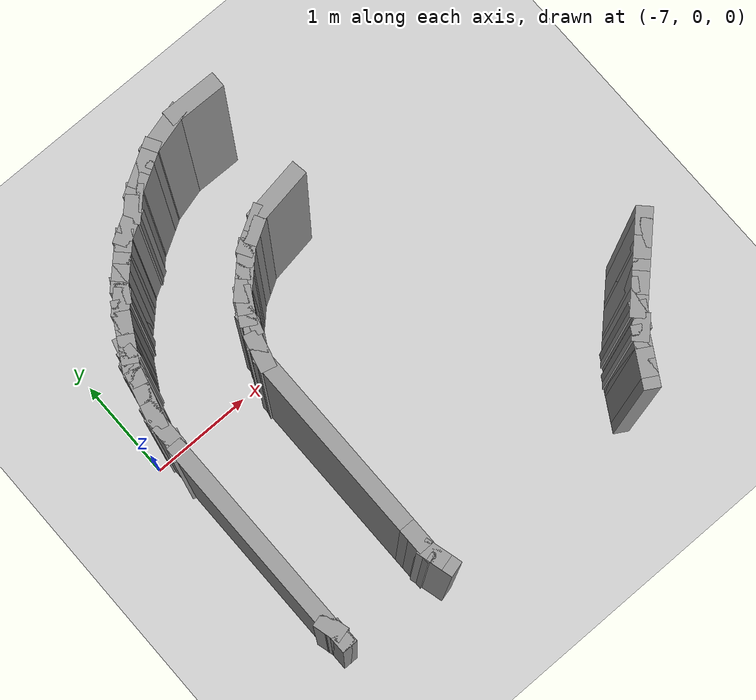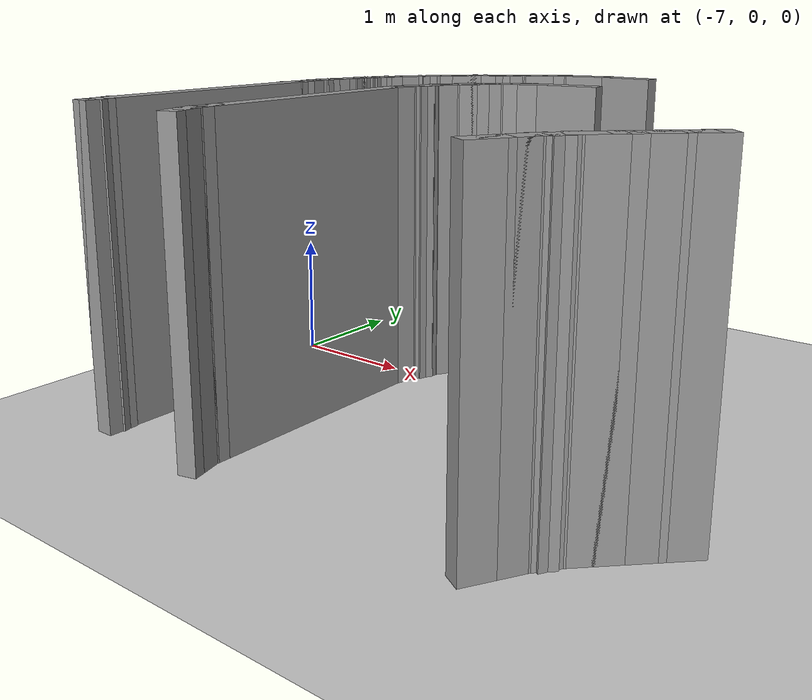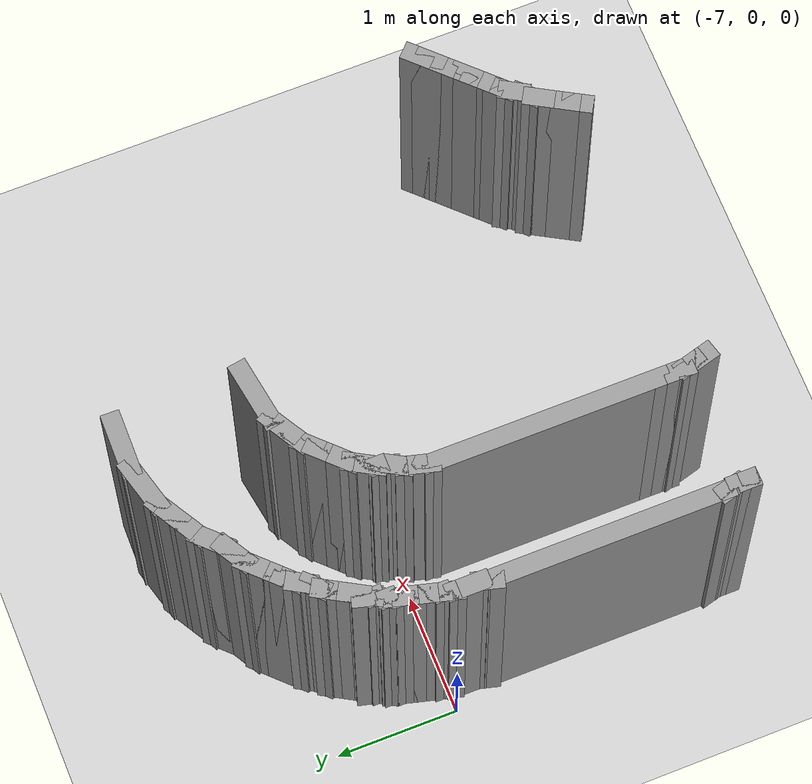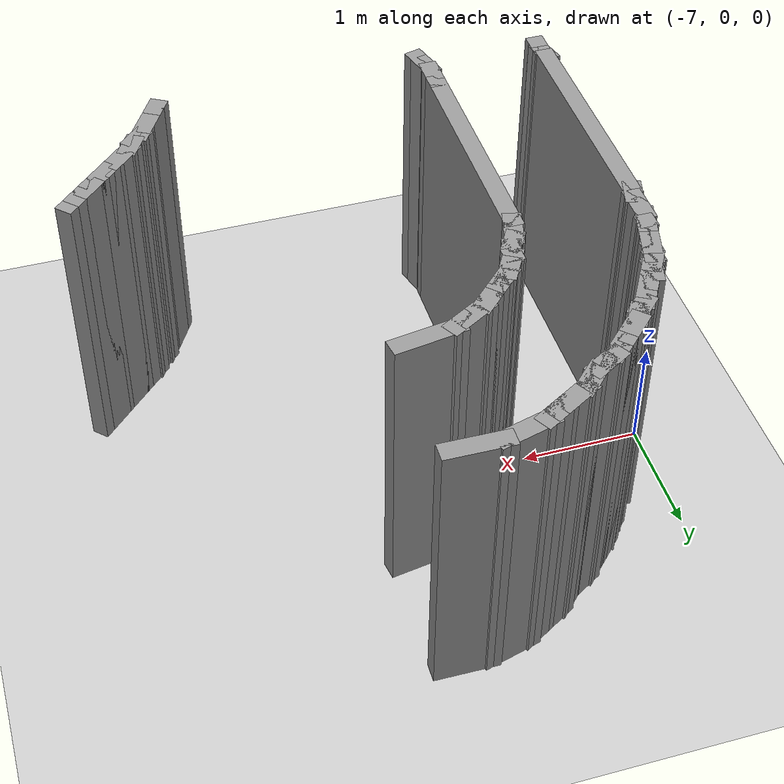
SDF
<sdf version="1.7">
 <world name="default">
  <model name="ground_plane">
   <static>1</static>
   <link name="link">
    <collision name="collision">
     <geometry><plane><normal>0 0 1</normal><size>100 100</size></plane></geometry>
     <surface><friction><ode><mu>100</mu><mu2>50</mu2></ode></friction></surface>
    </collision>
    <visual name="visual">
     <cast_shadows>0</cast_shadows>
     <geometry><plane><normal>0 0 1</normal><size>100 100</size></plane></geometry>
     <material>
      <script><uri>file://media/materials/scripts/gazebo.material</uri><name>Gazebo/Grey</name></script>
     </material>
    </visual>
   </link>
  </model>
  <model name="playground_track">
   <pose>0.405729 -1.1815 0 0 -0 0</pose>
   <link name="Wall_229">
    <collision name="Wall_229_Collision">
     <geometry><box><size>0.15 0.15 2.5</size></box></geometry>
     <pose>0 0 1.25 0 -0 0</pose>
    </collision>
    <visual name="Wall_229_Visual">
     <pose>0 0 1.25 0 -0 0</pose>
     <geometry><box><size>0.15 0.15 2.5</size></box></geometry>
     <material>
      <script><uri>file://media/materials/scripts/gazebo.material</uri><name>Gazebo/Grey</name></script>
      <ambient>1 1 1 1</ambient>
     </material>
     <meta><layer>0</layer></meta>
    </visual>
    <pose>-7.2272 -1.21597 0 0 -0 0</pose>
   </link>
   <link name="Wall_230">
    <collision name="Wall_230_Collision">
     <geometry><box><size>0.25 0.15 2.5</size></box></geometry>
     <pose>0 0 1.25 0 -0 0</pose>
    </collision>
    <visual name="Wall_230_Visual">
     <pose>0 0 1.25 0 -0 0</pose>
     <geometry><box><size>0.25 0.15 2.5</size></box></geometry>
     <material>
      <script><uri>file://media/materials/scripts/gazebo.material</uri><name>Gazebo/Grey</name></script>
      <ambient>1 1 1 1</ambient>
     </material>
     <meta><layer>0</layer></meta>
    </visual>
    <pose>-7.2272 -1.16597 0 0 -0 1.5708</pose>
   </link>
   <link name="Wall_231">
    <collision name="Wall_231_Collision">
     <geometry><box><size>0.253439 0.15 2.5</size></box></geometry>
     <pose>0 0 1.25 0 -0 0</pose>
    </collision>
    <visual name="Wall_231_Visual">
     <pose>0 0 1.25 0 -0 0</pose>
     <geometry><box><size>0.253439 0.15 2.5</size></box></geometry>
     <material>
      <script><uri>file://media/materials/scripts/gazebo.material</uri><name>Gazebo/Grey</name></script>
      <ambient>1 1 1 1</ambient>
     </material>
     <meta><layer>0</layer></meta>
    </visual>
    <pose>-7.24042 -1.06597 0 0 -0 1.82937</pose>
   </link>
   <link name="Wall_232">
    <collision name="Wall_232_Collision">
     <geometry><box><size>2 0.15 2.5</size></box></geometry>
     <pose>0 0 1.25 0 -0 0</pose>
    </collision>
    <visual name="Wall_232_Visual">
     <pose>0 0 1.25 0 -0 0</pose>
     <geometry><box><size>2 0.15 2.5</size></box></geometry>
     <material>
      <script><uri>file://media/materials/scripts/gazebo.material</uri><name>Gazebo/Grey</name></script>
      <ambient>1 1 1 1</ambient>
     </material>
     <meta><layer>0</layer></meta>
    </visual>
    <pose>-7.24042 -0.090972 0 0 -0 1.5708</pose>
   </link>
   <link name="Wall_233">
    <collision name="Wall_233_Collision">
     <geometry><box><size>0.253439 0.15 2.5</size></box></geometry>
     <pose>0 0 1.25 0 -0 0</pose>
    </collision>
    <visual name="Wall_233_Visual">
     <pose>0 0 1.25 0 -0 0</pose>
     <geometry><box><size>0.253439 0.15 2.5</size></box></geometry>
     <material>
      <script><uri>file://media/materials/scripts/gazebo.material</uri><name>Gazebo/Grey</name></script>
      <ambient>1 1 1 1</ambient>
     </material>
     <meta><layer>0</layer></meta>
    </visual>
    <pose>-7.24042 0.884028 0 0 -0 1.31222</pose>
   </link>
   <link name="Wall_234">
    <collision name="Wall_234_Collision">
     <geometry><box><size>0.25 0.15 2.5</size></box></geometry>
     <pose>0 0 1.25 0 -0 0</pose>
    </collision>
    <visual name="Wall_234_Visual">
     <pose>0 0 1.25 0 -0 0</pose>
     <geometry><box><size>0.25 0.15 2.5</size></box></geometry>
     <material>
      <script><uri>file://media/materials/scripts/gazebo.material</uri><name>Gazebo/Grey</name></script>
      <ambient>1 1 1 1</ambient>
     </material>
     <meta><layer>0</layer></meta>
    </visual>
    <pose>-7.2272 0.984028 0 0 -0 1.5708</pose>
   </link>
   <link name="Wall_235">
    <collision name="Wall_235_Collision">
     <geometry><box><size>0.25 0.15 2.5</size></box></geometry>
     <pose>0 0 1.25 0 -0 0</pose>
    </collision>
    <visual name="Wall_235_Visual">
     <pose>0 0 1.25 0 -0 0</pose>
     <geometry><box><size>0.25 0.15 2.5</size></box></geometry>
     <material>
      <script><uri>file://media/materials/scripts/gazebo.material</uri><name>Gazebo/Grey</name></script>
      <ambient>1 1 1 1</ambient>
     </material>
     <meta><layer>0</layer></meta>
    </visual>
    <pose>-7.2272 1.08403 0 0 -0 1.5708</pose>
   </link>
   <link name="Wall_236">
    <collision name="Wall_236_Collision">
     <geometry><box><size>0.25 0.15 2.5</size></box></geometry>
     <pose>0 0 1.25 0 -0 0</pose>
    </collision>
    <visual name="Wall_236_Visual">
     <pose>0 0 1.25 0 -0 0</pose>
     <geometry><box><size>0.25 0.15 2.5</size></box></geometry>
     <material>
      <script><uri>file://media/materials/scripts/gazebo.material</uri><name>Gazebo/Grey</name></script>
      <ambient>1 1 1 1</ambient>
     </material>
     <meta><layer>0</layer></meta>
    </visual>
    <pose>-7.21425 1.18233 0 0 -0 1.309</pose>
   </link>
   <link name="Wall_237">
    <collision name="Wall_237_Collision">
     <geometry><box><size>0.15 0.15 2.5</size></box></geometry>
     <pose>0 0 1.25 0 -0 0</pose>
    </collision>
    <visual name="Wall_237_Visual">
     <pose>0 0 1.25 0 -0 0</pose>
     <geometry><box><size>0.15 0.15 2.5</size></box></geometry>
     <material>
      <script><uri>file://media/materials/scripts/gazebo.material</uri><name>Gazebo/Grey</name></script>
      <ambient>1 1 1 1</ambient>
     </material>
     <meta><layer>0</layer></meta>
    </visual>
    <pose>-7.20131 1.23062 0 0 -0 0</pose>
   </link>
   <link name="Wall_238">
    <collision name="Wall_238_Collision">
     <geometry><box><size>0.25 0.15 2.5</size></box></geometry>
     <pose>0 0 1.25 0 -0 0</pose>
    </collision>
    <visual name="Wall_238_Visual">
     <pose>0 0 1.25 0 -0 0</pose>
     <geometry><box><size>0.25 0.15 2.5</size></box></geometry>
     <material>
      <script><uri>file://media/materials/scripts/gazebo.material</uri><name>Gazebo/Grey</name></script>
      <ambient>1 1 1 1</ambient>
     </material>
     <meta><layer>0</layer></meta>
    </visual>
    <pose>-7.18837 1.27892 0 0 -0 1.309</pose>
   </link>
   <link name="Wall_239">
    <collision name="Wall_239_Collision">
     <geometry><box><size>0.25 0.15 2.5</size></box></geometry>
     <pose>0 0 1.25 0 -0 0</pose>
    </collision>
    <visual name="Wall_239_Visual">
     <pose>0 0 1.25 0 -0 0</pose>
     <geometry><box><size>0.25 0.15 2.5</size></box></geometry>
     <material>
      <script><uri>file://media/materials/scripts/gazebo.material</uri><name>Gazebo/Grey</name></script>
      <ambient>1 1 1 1</ambient>
     </material>
     <meta><layer>0</layer></meta>
    </visual>
    <pose>-7.16249 1.37551 0 0 -0 1.309</pose>
   </link>
   <link name="Wall_240">
    <collision name="Wall_240_Collision">
     <geometry><box><size>0.25 0.15 2.5</size></box></geometry>
     <pose>0 0 1.25 0 -0 0</pose>
    </collision>
    <visual name="Wall_240_Visual">
     <pose>0 0 1.25 0 -0 0</pose>
     <geometry><box><size>0.25 0.15 2.5</size></box></geometry>
     <material>
      <script><uri>file://media/materials/scripts/gazebo.material</uri><name>Gazebo/Grey</name></script>
      <ambient>1 1 1 1</ambient>
     </material>
     <meta><layer>0</layer></meta>
    </visual>
    <pose>-7.13661 1.4721 0 0 -0 1.309</pose>
   </link>
   <link name="Wall_241">
    <collision name="Wall_241_Collision">
     <geometry><box><size>0.25 0.15 2.5</size></box></geometry>
     <pose>0 0 1.25 0 -0 0</pose>
    </collision>
    <visual name="Wall_241_Visual">
     <pose>0 0 1.25 0 -0 0</pose>
     <geometry><box><size>0.25 0.15 2.5</size></box></geometry>
     <material>
      <script><uri>file://media/materials/scripts/gazebo.material</uri><name>Gazebo/Grey</name></script>
      <ambient>1 1 1 1</ambient>
     </material>
     <meta><layer>0</layer></meta>
    </visual>
    <pose>-7.13661 1.4721 0 0 -0 -1.8326</pose>
   </link>
   <link name="Wall_242">
    <collision name="Wall_242_Collision">
     <geometry><box><size>0.25 0.15 2.5</size></box></geometry>
     <pose>0 0 1.25 0 -0 0</pose>
    </collision>
    <visual name="Wall_242_Visual">
     <pose>0 0 1.25 0 -0 0</pose>
     <geometry><box><size>0.25 0.15 2.5</size></box></geometry>
     <material>
      <script><uri>file://media/materials/scripts/gazebo.material</uri><name>Gazebo/Grey</name></script>
      <ambient>1 1 1 1</ambient>
     </material>
     <meta><layer>0</layer></meta>
    </visual>
    <pose>-7.13661 1.4721 0 0 -0 1.309</pose>
   </link>
   <link name="Wall_243">
    <collision name="Wall_243_Collision">
     <geometry><box><size>0.15 0.15 2.5</size></box></geometry>
     <pose>0 0 1.25 0 -0 0</pose>
    </collision>
    <visual name="Wall_243_Visual">
     <pose>0 0 1.25 0 -0 0</pose>
     <geometry><box><size>0.15 0.15 2.5</size></box></geometry>
     <material>
      <script><uri>file://media/materials/scripts/gazebo.material</uri><name>Gazebo/Grey</name></script>
      <ambient>1 1 1 1</ambient>
     </material>
     <meta><layer>0</layer></meta>
    </visual>
    <pose>-7.12367 1.5204 0 0 -0 0</pose>
   </link>
   <link name="Wall_244">
    <collision name="Wall_244_Collision">
     <geometry><box><size>0.25 0.15 2.5</size></box></geometry>
     <pose>0 0 1.25 0 -0 0</pose>
    </collision>
    <visual name="Wall_244_Visual">
     <pose>0 0 1.25 0 -0 0</pose>
     <geometry><box><size>0.25 0.15 2.5</size></box></geometry>
     <material>
      <script><uri>file://media/materials/scripts/gazebo.material</uri><name>Gazebo/Grey</name></script>
      <ambient>1 1 1 1</ambient>
     </material>
     <meta><layer>0</layer></meta>
    </visual>
    <pose>-7.11073 1.56869 0 0 -0 1.309</pose>
   </link>
   <link name="Wall_245">
    <collision name="Wall_245_Collision">
     <geometry><box><size>0.25 0.15 2.5</size></box></geometry>
     <pose>0 0 1.25 0 -0 0</pose>
    </collision>
    <visual name="Wall_245_Visual">
     <pose>0 0 1.25 0 -0 0</pose>
     <geometry><box><size>0.25 0.15 2.5</size></box></geometry>
     <material>
      <script><uri>file://media/materials/scripts/gazebo.material</uri><name>Gazebo/Grey</name></script>
      <ambient>1 1 1 1</ambient>
     </material>
     <meta><layer>0</layer></meta>
    </visual>
    <pose>-7.07279 1.66029 0 0 -0 1.0472</pose>
   </link>
   <link name="Wall_247">
    <collision name="Wall_247_Collision">
     <geometry><box><size>0.15 0.15 2.5</size></box></geometry>
     <pose>0 0 1.25 0 -0 0</pose>
    </collision>
    <visual name="Wall_247_Visual">
     <pose>0 0 1.25 0 -0 0</pose>
     <geometry><box><size>0.15 0.15 2.5</size></box></geometry>
     <material>
      <script><uri>file://media/materials/scripts/gazebo.material</uri><name>Gazebo/Grey</name></script>
      <ambient>1 1 1 1</ambient>
     </material>
     <meta><layer>0</layer></meta>
    </visual>
    <pose>-7.09779 1.61699 0 0 -0 0</pose>
   </link>
   <link name="Wall_248">
    <collision name="Wall_248_Collision">
     <geometry><box><size>0.15 0.15 2.5</size></box></geometry>
     <pose>0 0 1.25 0 -0 0</pose>
    </collision>
    <visual name="Wall_248_Visual">
     <pose>0 0 1.25 0 -0 0</pose>
     <geometry><box><size>0.15 0.15 2.5</size></box></geometry>
     <material>
      <script><uri>file://media/materials/scripts/gazebo.material</uri><name>Gazebo/Grey</name></script>
      <ambient>1 1 1 1</ambient>
     </material>
     <meta><layer>0</layer></meta>
    </visual>
    <pose>-7.09779 1.61699 0 0 -0 0</pose>
   </link>
   <link name="Wall_249">
    <collision name="Wall_249_Collision">
     <geometry><box><size>0.25 0.15 2.5</size></box></geometry>
     <pose>0 0 1.25 0 -0 0</pose>
    </collision>
    <visual name="Wall_249_Visual">
     <pose>0 0 1.25 0 -0 0</pose>
     <geometry><box><size>0.25 0.15 2.5</size></box></geometry>
     <material>
      <script><uri>file://media/materials/scripts/gazebo.material</uri><name>Gazebo/Grey</name></script>
      <ambient>1 1 1 1</ambient>
     </material>
     <meta><layer>0</layer></meta>
    </visual>
    <pose>-7.07279 1.66029 0 0 -0 1.0472</pose>
   </link>
   <link name="Wall_250">
    <collision name="Wall_250_Collision">
     <geometry><box><size>0.15 0.15 2.5</size></box></geometry>
     <pose>0 0 1.25 0 -0 0</pose>
    </collision>
    <visual name="Wall_250_Visual">
     <pose>0 0 1.25 0 -0 0</pose>
     <geometry><box><size>0.15 0.15 2.5</size></box></geometry>
     <material>
      <script><uri>file://media/materials/scripts/gazebo.material</uri><name>Gazebo/Grey</name></script>
      <ambient>1 1 1 1</ambient>
     </material>
     <meta><layer>0</layer></meta>
    </visual>
    <pose>-7.04779 1.70359 0 0 -0 0</pose>
   </link>
   <link name="Wall_251">
    <collision name="Wall_251_Collision">
     <geometry><box><size>0.25 0.15 2.5</size></box></geometry>
     <pose>0 0 1.25 0 -0 0</pose>
    </collision>
    <visual name="Wall_251_Visual">
     <pose>0 0 1.25 0 -0 0</pose>
     <geometry><box><size>0.25 0.15 2.5</size></box></geometry>
     <material>
      <script><uri>file://media/materials/scripts/gazebo.material</uri><name>Gazebo/Grey</name></script>
      <ambient>1 1 1 1</ambient>
     </material>
     <meta><layer>0</layer></meta>
    </visual>
    <pose>-7.03484 1.75189 0 0 -0 1.309</pose>
   </link>
   <link name="Wall_253">
    <collision name="Wall_253_Collision">
     <geometry><box><size>0.15 0.15 2.5</size></box></geometry>
     <pose>0 0 1.25 0 -0 0</pose>
    </collision>
    <visual name="Wall_253_Visual">
     <pose>0 0 1.25 0 -0 0</pose>
     <geometry><box><size>0.15 0.15 2.5</size></box></geometry>
     <material>
      <script><uri>file://media/materials/scripts/gazebo.material</uri><name>Gazebo/Grey</name></script>
      <ambient>1 1 1 1</ambient>
     </material>
     <meta><layer>0</layer></meta>
    </visual>
    <pose>-7.04779 1.70359 0 0 -0 0</pose>
   </link>
   <link name="Wall_254">
    <collision name="Wall_254_Collision">
     <geometry><box><size>0.25 0.15 2.5</size></box></geometry>
     <pose>0 0 1.25 0 -0 0</pose>
    </collision>
    <visual name="Wall_254_Visual">
     <pose>0 0 1.25 0 -0 0</pose>
     <geometry><box><size>0.25 0.15 2.5</size></box></geometry>
     <material>
      <script><uri>file://media/materials/scripts/gazebo.material</uri><name>Gazebo/Grey</name></script>
      <ambient>1 1 1 1</ambient>
     </material>
     <meta><layer>0</layer></meta>
    </visual>
    <pose>-7.02279 1.7469 0 0 -0 1.0472</pose>
   </link>
   <link name="Wall_255">
    <collision name="Wall_255_Collision">
     <geometry><box><size>0.25 0.15 2.5</size></box></geometry>
     <pose>0 0 1.25 0 -0 0</pose>
    </collision>
    <visual name="Wall_255_Visual">
     <pose>0 0 1.25 0 -0 0</pose>
     <geometry><box><size>0.25 0.15 2.5</size></box></geometry>
     <material>
      <script><uri>file://media/materials/scripts/gazebo.material</uri><name>Gazebo/Grey</name></script>
      <ambient>1 1 1 1</ambient>
     </material>
     <meta><layer>0</layer></meta>
    </visual>
    <pose>-6.97279 1.8335 0 0 -0 1.0472</pose>
   </link>
   <link name="Wall_256">
    <collision name="Wall_256_Collision">
     <geometry><box><size>0.25 0.15 2.5</size></box></geometry>
     <pose>0 0 1.25 0 -0 0</pose>
    </collision>
    <visual name="Wall_256_Visual">
     <pose>0 0 1.25 0 -0 0</pose>
     <geometry><box><size>0.25 0.15 2.5</size></box></geometry>
     <material>
      <script><uri>file://media/materials/scripts/gazebo.material</uri><name>Gazebo/Grey</name></script>
      <ambient>1 1 1 1</ambient>
     </material>
     <meta><layer>0</layer></meta>
    </visual>
    <pose>-6.92279 1.9201 0 0 -0 1.0472</pose>
   </link>
   <link name="Wall_257">
    <collision name="Wall_257_Collision">
     <geometry><box><size>0.25 0.15 2.5</size></box></geometry>
     <pose>0 0 1.25 0 -0 0</pose>
    </collision>
    <visual name="Wall_257_Visual">
     <pose>0 0 1.25 0 -0 0</pose>
     <geometry><box><size>0.25 0.15 2.5</size></box></geometry>
     <material>
      <script><uri>file://media/materials/scripts/gazebo.material</uri><name>Gazebo/Grey</name></script>
      <ambient>1 1 1 1</ambient>
     </material>
     <meta><layer>0</layer></meta>
    </visual>
    <pose>-6.87279 2.0067 0 0 -0 1.0472</pose>
   </link>
   <link name="Wall_258">
    <collision name="Wall_258_Collision">
     <geometry><box><size>0.25 0.15 2.5</size></box></geometry>
     <pose>0 0 1.25 0 -0 0</pose>
    </collision>
    <visual name="Wall_258_Visual">
     <pose>0 0 1.25 0 -0 0</pose>
     <geometry><box><size>0.25 0.15 2.5</size></box></geometry>
     <material>
      <script><uri>file://media/materials/scripts/gazebo.material</uri><name>Gazebo/Grey</name></script>
      <ambient>1 1 1 1</ambient>
     </material>
     <meta><layer>0</layer></meta>
    </visual>
    <pose>-6.81243 2.08536 0 0 -0 0.785398</pose>
   </link>
   <link name="Wall_259">
    <collision name="Wall_259_Collision">
     <geometry><box><size>0.25 0.15 2.5</size></box></geometry>
     <pose>0 0 1.25 0 -0 0</pose>
    </collision>
    <visual name="Wall_259_Visual">
     <pose>0 0 1.25 0 -0 0</pose>
     <geometry><box><size>0.25 0.15 2.5</size></box></geometry>
     <material>
      <script><uri>file://media/materials/scripts/gazebo.material</uri><name>Gazebo/Grey</name></script>
      <ambient>1 1 1 1</ambient>
     </material>
     <meta><layer>0</layer></meta>
    </visual>
    <pose>-6.75207 2.16402 0 0 -0 1.0472</pose>
   </link>
   <link name="Wall_260">
    <collision name="Wall_260_Collision">
     <geometry><box><size>0.25 0.15 2.5</size></box></geometry>
     <pose>0 0 1.25 0 -0 0</pose>
    </collision>
    <visual name="Wall_260_Visual">
     <pose>0 0 1.25 0 -0 0</pose>
     <geometry><box><size>0.25 0.15 2.5</size></box></geometry>
     <material>
      <script><uri>file://media/materials/scripts/gazebo.material</uri><name>Gazebo/Grey</name></script>
      <ambient>1 1 1 1</ambient>
     </material>
     <meta><layer>0</layer></meta>
    </visual>
    <pose>-6.69172 2.24267 0 0 -0 0.785398</pose>
   </link>
   <link name="Wall_261">
    <collision name="Wall_261_Collision">
     <geometry><box><size>0.25 0.15 2.5</size></box></geometry>
     <pose>0 0 1.25 0 -0 0</pose>
    </collision>
    <visual name="Wall_261_Visual">
     <pose>0 0 1.25 0 -0 0</pose>
     <geometry><box><size>0.25 0.15 2.5</size></box></geometry>
     <material>
      <script><uri>file://media/materials/scripts/gazebo.material</uri><name>Gazebo/Grey</name></script>
      <ambient>1 1 1 1</ambient>
     </material>
     <meta><layer>0</layer></meta>
    </visual>
    <pose>-6.62101 2.31338 0 0 -0 0.785398</pose>
   </link>
   <link name="Wall_262">
    <collision name="Wall_262_Collision">
     <geometry><box><size>0.25 0.15 2.5</size></box></geometry>
     <pose>0 0 1.25 0 -0 0</pose>
    </collision>
    <visual name="Wall_262_Visual">
     <pose>0 0 1.25 0 -0 0</pose>
     <geometry><box><size>0.25 0.15 2.5</size></box></geometry>
     <material>
      <script><uri>file://media/materials/scripts/gazebo.material</uri><name>Gazebo/Grey</name></script>
      <ambient>1 1 1 1</ambient>
     </material>
     <meta><layer>0</layer></meta>
    </visual>
    <pose>-6.5503 2.38409 0 0 -0 0.785398</pose>
   </link>
   <link name="Wall_263">
    <collision name="Wall_263_Collision">
     <geometry><box><size>0.25 0.15 2.5</size></box></geometry>
     <pose>0 0 1.25 0 -0 0</pose>
    </collision>
    <visual name="Wall_263_Visual">
     <pose>0 0 1.25 0 -0 0</pose>
     <geometry><box><size>0.25 0.15 2.5</size></box></geometry>
     <material>
      <script><uri>file://media/materials/scripts/gazebo.material</uri><name>Gazebo/Grey</name></script>
      <ambient>1 1 1 1</ambient>
     </material>
     <meta><layer>0</layer></meta>
    </visual>
    <pose>-6.47959 2.4548 0 0 -0 0.785398</pose>
   </link>
   <link name="Wall_264">
    <collision name="Wall_264_Collision">
     <geometry><box><size>0.25 0.15 2.5</size></box></geometry>
     <pose>0 0 1.25 0 -0 0</pose>
    </collision>
    <visual name="Wall_264_Visual">
     <pose>0 0 1.25 0 -0 0</pose>
     <geometry><box><size>0.25 0.15 2.5</size></box></geometry>
     <material>
      <script><uri>file://media/materials/scripts/gazebo.material</uri><name>Gazebo/Grey</name></script>
      <ambient>1 1 1 1</ambient>
     </material>
     <meta><layer>0</layer></meta>
    </visual>
    <pose>-6.40093 2.51516 0 0 -0 0.523599</pose>
   </link>
   <link name="Wall_265">
    <collision name="Wall_265_Collision">
     <geometry><box><size>0.25 0.15 2.5</size></box></geometry>
     <pose>0 0 1.25 0 -0 0</pose>
    </collision>
    <visual name="Wall_265_Visual">
     <pose>0 0 1.25 0 -0 0</pose>
     <geometry><box><size>0.25 0.15 2.5</size></box></geometry>
     <material>
      <script><uri>file://media/materials/scripts/gazebo.material</uri><name>Gazebo/Grey</name></script>
      <ambient>1 1 1 1</ambient>
     </material>
     <meta><layer>0</layer></meta>
    </visual>
    <pose>-6.31433 2.56516 0 0 -0 0.523599</pose>
   </link>
   <link name="Wall_266">
    <collision name="Wall_266_Collision">
     <geometry><box><size>0.25 0.15 2.5</size></box></geometry>
     <pose>0 0 1.25 0 -0 0</pose>
    </collision>
    <visual name="Wall_266_Visual">
     <pose>0 0 1.25 0 -0 0</pose>
     <geometry><box><size>0.25 0.15 2.5</size></box></geometry>
     <material>
      <script><uri>file://media/materials/scripts/gazebo.material</uri><name>Gazebo/Grey</name></script>
      <ambient>1 1 1 1</ambient>
     </material>
     <meta><layer>0</layer></meta>
    </visual>
    <pose>-6.23567 2.62552 0 0 -0 0.785398</pose>
   </link>
   <link name="Wall_267">
    <collision name="Wall_267_Collision">
     <geometry><box><size>0.25 0.15 2.5</size></box></geometry>
     <pose>0 0 1.25 0 -0 0</pose>
    </collision>
    <visual name="Wall_267_Visual">
     <pose>0 0 1.25 0 -0 0</pose>
     <geometry><box><size>0.25 0.15 2.5</size></box></geometry>
     <material>
      <script><uri>file://media/materials/scripts/gazebo.material</uri><name>Gazebo/Grey</name></script>
      <ambient>1 1 1 1</ambient>
     </material>
     <meta><layer>0</layer></meta>
    </visual>
    <pose>-6.16496 2.69623 0 0 -0 0.785398</pose>
   </link>
   <link name="Wall_268">
    <collision name="Wall_268_Collision">
     <geometry><box><size>0.25 0.15 2.5</size></box></geometry>
     <pose>0 0 1.25 0 -0 0</pose>
    </collision>
    <visual name="Wall_268_Visual">
     <pose>0 0 1.25 0 -0 0</pose>
     <geometry><box><size>0.25 0.15 2.5</size></box></geometry>
     <material>
      <script><uri>file://media/materials/scripts/gazebo.material</uri><name>Gazebo/Grey</name></script>
      <ambient>1 1 1 1</ambient>
     </material>
     <meta><layer>0</layer></meta>
    </visual>
    <pose>-6.08631 2.75658 0 0 -0 0.523599</pose>
   </link>
   <link name="Wall_269">
    <collision name="Wall_269_Collision">
     <geometry><box><size>0.25 0.15 2.5</size></box></geometry>
     <pose>0 0 1.25 0 -0 0</pose>
    </collision>
    <visual name="Wall_269_Visual">
     <pose>0 0 1.25 0 -0 0</pose>
     <geometry><box><size>0.25 0.15 2.5</size></box></geometry>
     <material>
      <script><uri>file://media/materials/scripts/gazebo.material</uri><name>Gazebo/Grey</name></script>
      <ambient>1 1 1 1</ambient>
     </material>
     <meta><layer>0</layer></meta>
    </visual>
    <pose>-5.9997 2.80658 0 0 -0 0.523599</pose>
   </link>
   <link name="Wall_270">
    <collision name="Wall_270_Collision">
     <geometry><box><size>0.25 0.15 2.5</size></box></geometry>
     <pose>0 0 1.25 0 -0 0</pose>
    </collision>
    <visual name="Wall_270_Visual">
     <pose>0 0 1.25 0 -0 0</pose>
     <geometry><box><size>0.25 0.15 2.5</size></box></geometry>
     <material>
      <script><uri>file://media/materials/scripts/gazebo.material</uri><name>Gazebo/Grey</name></script>
      <ambient>1 1 1 1</ambient>
     </material>
     <meta><layer>0</layer></meta>
    </visual>
    <pose>-5.9131 2.85658 0 0 -0 0.523599</pose>
   </link>
   <link name="Wall_271">
    <collision name="Wall_271_Collision">
     <geometry><box><size>0.25 0.15 2.5</size></box></geometry>
     <pose>0 0 1.25 0 -0 0</pose>
    </collision>
    <visual name="Wall_271_Visual">
     <pose>0 0 1.25 0 -0 0</pose>
     <geometry><box><size>0.25 0.15 2.5</size></box></geometry>
     <material>
      <script><uri>file://media/materials/scripts/gazebo.material</uri><name>Gazebo/Grey</name></script>
      <ambient>1 1 1 1</ambient>
     </material>
     <meta><layer>0</layer></meta>
    </visual>
    <pose>-5.8265 2.90658 0 0 -0 0.523599</pose>
   </link>
   <link name="Wall_272">
    <collision name="Wall_272_Collision">
     <geometry><box><size>0.5 0.15 2.5</size></box></geometry>
     <pose>0 0 1.25 0 -0 0</pose>
    </collision>
    <visual name="Wall_272_Visual">
     <pose>0 0 1.25 0 -0 0</pose>
     <geometry><box><size>0.5 0.15 2.5</size></box></geometry>
     <material>
      <script><uri>file://media/materials/scripts/gazebo.material</uri><name>Gazebo/Grey</name></script>
      <ambient>1 1 1 1</ambient>
     </material>
     <meta><layer>0</layer></meta>
    </visual>
    <pose>-5.61416 2.97687 0 0 -0 0.261799</pose>
   </link>
   <link name="Wall_273">
    <collision name="Wall_273_Collision">
     <geometry><box><size>0.541355 0.15 2.5</size></box></geometry>
     <pose>0 0 1.25 0 -0 0</pose>
    </collision>
    <visual name="Wall_273_Visual">
     <pose>0 0 1.25 0 -0 0</pose>
     <geometry><box><size>0.541355 0.15 2.5</size></box></geometry>
     <material>
      <script><uri>file://media/materials/scripts/gazebo.material</uri><name>Gazebo/Grey</name></script>
      <ambient>1 1 1 1</ambient>
     </material>
     <meta><layer>0</layer></meta>
    </visual>
    <pose>-5.24947 3.01924 0 0 -0 -0.014972</pose>
   </link>
   <link name="Wall_368">
    <collision name="Wall_368_Collision">
     <geometry><box><size>0.25 0.15 2.5</size></box></geometry>
     <pose>0 0 1.25 0 -0 0</pose>
    </collision>
    <visual name="Wall_368_Visual">
     <pose>0 0 1.25 0 -0 0</pose>
     <geometry><box><size>0.25 0.15 2.5</size></box></geometry>
     <material>
      <script><uri>file://media/materials/scripts/gazebo.material</uri><name>Gazebo/Grey</name></script>
      <ambient>1 1 1 1</ambient>
     </material>
     <meta><layer>0</layer></meta>
    </visual>
    <pose>-3.08914 -0.213364 0 0 -0 -2.35619</pose>
   </link>
   <link name="Wall_369">
    <collision name="Wall_369_Collision">
     <geometry><box><size>0.25 0.15 2.5</size></box></geometry>
     <pose>0 0 1.25 0 -0 0</pose>
    </collision>
    <visual name="Wall_369_Visual">
     <pose>0 0 1.25 0 -0 0</pose>
     <geometry><box><size>0.25 0.15 2.5</size></box></geometry>
     <material>
      <script><uri>file://media/materials/scripts/gazebo.material</uri><name>Gazebo/Grey</name></script>
      <ambient>1 1 1 1</ambient>
     </material>
     <meta><layer>0</layer></meta>
    </visual>
    <pose>-3.15985 -0.284074 0 0 -0 -2.35619</pose>
   </link>
   <link name="Wall_370">
    <collision name="Wall_370_Collision">
     <geometry><box><size>0.25 0.15 2.5</size></box></geometry>
     <pose>0 0 1.25 0 -0 0</pose>
    </collision>
    <visual name="Wall_370_Visual">
     <pose>0 0 1.25 0 -0 0</pose>
     <geometry><box><size>0.25 0.15 2.5</size></box></geometry>
     <material>
      <script><uri>file://media/materials/scripts/gazebo.material</uri><name>Gazebo/Grey</name></script>
      <ambient>1 1 1 1</ambient>
     </material>
     <meta><layer>0</layer></meta>
    </visual>
    <pose>-3.23056 -0.354785 0 0 -0 -2.35619</pose>
   </link>
   <link name="Wall_371">
    <collision name="Wall_371_Collision">
     <geometry><box><size>0.25 0.15 2.5</size></box></geometry>
     <pose>0 0 1.25 0 -0 0</pose>
    </collision>
    <visual name="Wall_371_Visual">
     <pose>0 0 1.25 0 -0 0</pose>
     <geometry><box><size>0.25 0.15 2.5</size></box></geometry>
     <material>
      <script><uri>file://media/materials/scripts/gazebo.material</uri><name>Gazebo/Grey</name></script>
      <ambient>1 1 1 1</ambient>
     </material>
     <meta><layer>0</layer></meta>
    </visual>
    <pose>-3.30127 -0.425496 0 0 -0 -2.35619</pose>
   </link>
   <link name="Wall_372">
    <collision name="Wall_372_Collision">
     <geometry><box><size>0.25 0.15 2.5</size></box></geometry>
     <pose>0 0 1.25 0 -0 0</pose>
    </collision>
    <visual name="Wall_372_Visual">
     <pose>0 0 1.25 0 -0 0</pose>
     <geometry><box><size>0.25 0.15 2.5</size></box></geometry>
     <material>
      <script><uri>file://media/materials/scripts/gazebo.material</uri><name>Gazebo/Grey</name></script>
      <ambient>1 1 1 1</ambient>
     </material>
     <meta><layer>0</layer></meta>
    </visual>
    <pose>-3.37198 -0.496206 0 0 -0 -2.35619</pose>
   </link>
   <link name="Wall_373">
    <collision name="Wall_373_Collision">
     <geometry><box><size>0.25 0.15 2.5</size></box></geometry>
     <pose>0 0 1.25 0 -0 0</pose>
    </collision>
    <visual name="Wall_373_Visual">
     <pose>0 0 1.25 0 -0 0</pose>
     <geometry><box><size>0.25 0.15 2.5</size></box></geometry>
     <material>
      <script><uri>file://media/materials/scripts/gazebo.material</uri><name>Gazebo/Grey</name></script>
      <ambient>1 1 1 1</ambient>
     </material>
     <meta><layer>0</layer></meta>
    </visual>
    <pose>-3.44269 -0.566917 0 0 -0 -2.35619</pose>
   </link>
   <link name="Wall_374">
    <collision name="Wall_374_Collision">
     <geometry><box><size>0.25 0.15 2.5</size></box></geometry>
     <pose>0 0 1.25 0 -0 0</pose>
    </collision>
    <visual name="Wall_374_Visual">
     <pose>0 0 1.25 0 -0 0</pose>
     <geometry><box><size>0.25 0.15 2.5</size></box></geometry>
     <material>
      <script><uri>file://media/materials/scripts/gazebo.material</uri><name>Gazebo/Grey</name></script>
      <ambient>1 1 1 1</ambient>
     </material>
     <meta><layer>0</layer></meta>
    </visual>
    <pose>-3.5134 -0.637628 0 0 -0 -2.35619</pose>
   </link>
   <link name="Wall_375">
    <collision name="Wall_375_Collision">
     <geometry><box><size>0.25 0.15 2.5</size></box></geometry>
     <pose>0 0 1.25 0 -0 0</pose>
    </collision>
    <visual name="Wall_375_Visual">
     <pose>0 0 1.25 0 -0 0</pose>
     <geometry><box><size>0.25 0.15 2.5</size></box></geometry>
     <material>
      <script><uri>file://media/materials/scripts/gazebo.material</uri><name>Gazebo/Grey</name></script>
      <ambient>1 1 1 1</ambient>
     </material>
     <meta><layer>0</layer></meta>
    </visual>
    <pose>-3.58412 -0.708338 0 0 -0 -2.35619</pose>
   </link>
   <link name="Wall_376">
    <collision name="Wall_376_Collision">
     <geometry><box><size>0.25 0.15 2.5</size></box></geometry>
     <pose>0 0 1.25 0 -0 0</pose>
    </collision>
    <visual name="Wall_376_Visual">
     <pose>0 0 1.25 0 -0 0</pose>
     <geometry><box><size>0.25 0.15 2.5</size></box></geometry>
     <material>
      <script><uri>file://media/materials/scripts/gazebo.material</uri><name>Gazebo/Grey</name></script>
      <ambient>1 1 1 1</ambient>
     </material>
     <meta><layer>0</layer></meta>
    </visual>
    <pose>-3.64447 -0.786995 0 0 -0 -2.0944</pose>
   </link>
   <link name="Wall_377">
    <collision name="Wall_377_Collision">
     <geometry><box><size>0.25 0.15 2.5</size></box></geometry>
     <pose>0 0 1.25 0 -0 0</pose>
    </collision>
    <visual name="Wall_377_Visual">
     <pose>0 0 1.25 0 -0 0</pose>
     <geometry><box><size>0.25 0.15 2.5</size></box></geometry>
     <material>
      <script><uri>file://media/materials/scripts/gazebo.material</uri><name>Gazebo/Grey</name></script>
      <ambient>1 1 1 1</ambient>
     </material>
     <meta><layer>0</layer></meta>
    </visual>
    <pose>-3.70483 -0.865652 0 0 -0 -2.35619</pose>
   </link>
   <link name="Wall_378">
    <collision name="Wall_378_Collision">
     <geometry><box><size>0.25 0.15 2.5</size></box></geometry>
     <pose>0 0 1.25 0 -0 0</pose>
    </collision>
    <visual name="Wall_378_Visual">
     <pose>0 0 1.25 0 -0 0</pose>
     <geometry><box><size>0.25 0.15 2.5</size></box></geometry>
     <material>
      <script><uri>file://media/materials/scripts/gazebo.material</uri><name>Gazebo/Grey</name></script>
      <ambient>1 1 1 1</ambient>
     </material>
     <meta><layer>0</layer></meta>
    </visual>
    <pose>-3.76518 -0.944308 0 0 -0 -2.0944</pose>
   </link>
   <link name="Wall_379">
    <collision name="Wall_379_Collision">
     <geometry><box><size>0.25 0.15 2.5</size></box></geometry>
     <pose>0 0 1.25 0 -0 0</pose>
    </collision>
    <visual name="Wall_379_Visual">
     <pose>0 0 1.25 0 -0 0</pose>
     <geometry><box><size>0.25 0.15 2.5</size></box></geometry>
     <material>
      <script><uri>file://media/materials/scripts/gazebo.material</uri><name>Gazebo/Grey</name></script>
      <ambient>1 1 1 1</ambient>
     </material>
     <meta><layer>0</layer></meta>
    </visual>
    <pose>-3.81518 -1.03091 0 0 -0 -2.0944</pose>
   </link>
   <link name="Wall_380">
    <collision name="Wall_380_Collision">
     <geometry><box><size>0.25 0.15 2.5</size></box></geometry>
     <pose>0 0 1.25 0 -0 0</pose>
    </collision>
    <visual name="Wall_380_Visual">
     <pose>0 0 1.25 0 -0 0</pose>
     <geometry><box><size>0.25 0.15 2.5</size></box></geometry>
     <material>
      <script><uri>file://media/materials/scripts/gazebo.material</uri><name>Gazebo/Grey</name></script>
      <ambient>1 1 1 1</ambient>
     </material>
     <meta><layer>0</layer></meta>
    </visual>
    <pose>-3.86518 -1.11751 0 0 -0 -2.0944</pose>
   </link>
   <link name="Wall_381">
    <collision name="Wall_381_Collision">
     <geometry><box><size>0.25 0.15 2.5</size></box></geometry>
     <pose>0 0 1.25 0 -0 0</pose>
    </collision>
    <visual name="Wall_381_Visual">
     <pose>0 0 1.25 0 -0 0</pose>
     <geometry><box><size>0.25 0.15 2.5</size></box></geometry>
     <material>
      <script><uri>file://media/materials/scripts/gazebo.material</uri><name>Gazebo/Grey</name></script>
      <ambient>1 1 1 1</ambient>
     </material>
     <meta><layer>0</layer></meta>
    </visual>
    <pose>-3.91518 -1.20412 0 0 -0 -2.0944</pose>
   </link>
   <link name="Wall_415">
    <collision name="Wall_415_Collision">
     <geometry><box><size>0.25 0.15 2.5</size></box></geometry>
     <pose>0 0 1.25 0 -0 0</pose>
    </collision>
    <visual name="Wall_415_Visual">
     <pose>0 0 1.25 0 -0 0</pose>
     <geometry><box><size>0.25 0.15 2.5</size></box></geometry>
     <material>
      <script><uri>file://media/materials/scripts/gazebo.material</uri><name>Gazebo/Grey</name></script>
      <ambient>1 1 1 1</ambient>
     </material>
     <meta><layer>0</layer></meta>
    </visual>
    <pose>-6.19724 -1.26207 0 0 -0 1.8326</pose>
   </link>
   <link name="Wall_416">
    <collision name="Wall_416_Collision">
     <geometry><box><size>0.25 0.15 2.5</size></box></geometry>
     <pose>0 0 1.25 0 -0 0</pose>
    </collision>
    <visual name="Wall_416_Visual">
     <pose>0 0 1.25 0 -0 0</pose>
     <geometry><box><size>0.25 0.15 2.5</size></box></geometry>
     <material>
      <script><uri>file://media/materials/scripts/gazebo.material</uri><name>Gazebo/Grey</name></script>
      <ambient>1 1 1 1</ambient>
     </material>
     <meta><layer>0</layer></meta>
    </visual>
    <pose>-6.22312 -1.16548 0 0 -0 1.8326</pose>
   </link>
   <link name="Wall_417">
    <collision name="Wall_417_Collision">
     <geometry><box><size>0.15 0.15 2.5</size></box></geometry>
     <pose>0 0 1.25 0 -0 0</pose>
    </collision>
    <visual name="Wall_417_Visual">
     <pose>0 0 1.25 0 -0 0</pose>
     <geometry><box><size>0.15 0.15 2.5</size></box></geometry>
     <material>
      <script><uri>file://media/materials/scripts/gazebo.material</uri><name>Gazebo/Grey</name></script>
      <ambient>1 1 1 1</ambient>
     </material>
     <meta><layer>0</layer></meta>
    </visual>
    <pose>-6.23606 -1.11719 0 0 -0 0</pose>
   </link>
   <link name="Wall_418">
    <collision name="Wall_418_Collision">
     <geometry><box><size>0.25 0.15 2.5</size></box></geometry>
     <pose>0 0 1.25 0 -0 0</pose>
    </collision>
    <visual name="Wall_418_Visual">
     <pose>0 0 1.25 0 -0 0</pose>
     <geometry><box><size>0.25 0.15 2.5</size></box></geometry>
     <material>
      <script><uri>file://media/materials/scripts/gazebo.material</uri><name>Gazebo/Grey</name></script>
      <ambient>1 1 1 1</ambient>
     </material>
     <meta><layer>0</layer></meta>
    </visual>
    <pose>-6.23606 -1.06719 0 0 -0 1.5708</pose>
   </link>
   <link name="Wall_419">
    <collision name="Wall_419_Collision">
     <geometry><box><size>0.25 0.15 2.5</size></box></geometry>
     <pose>0 0 1.25 0 -0 0</pose>
    </collision>
    <visual name="Wall_419_Visual">
     <pose>0 0 1.25 0 -0 0</pose>
     <geometry><box><size>0.25 0.15 2.5</size></box></geometry>
     <material>
      <script><uri>file://media/materials/scripts/gazebo.material</uri><name>Gazebo/Grey</name></script>
      <ambient>1 1 1 1</ambient>
     </material>
     <meta><layer>0</layer></meta>
    </visual>
    <pose>-6.23606 -0.967185 0 0 -0 1.5708</pose>
   </link>
   <link name="Wall_420">
    <collision name="Wall_420_Collision">
     <geometry><box><size>2 0.15 2.5</size></box></geometry>
     <pose>0 0 1.25 0 -0 0</pose>
    </collision>
    <visual name="Wall_420_Visual">
     <pose>0 0 1.25 0 -0 0</pose>
     <geometry><box><size>2 0.15 2.5</size></box></geometry>
     <material>
      <script><uri>file://media/materials/scripts/gazebo.material</uri><name>Gazebo/Grey</name></script>
      <ambient>1 1 1 1</ambient>
     </material>
     <meta><layer>0</layer></meta>
    </visual>
    <pose>-6.23606 0.007815 0 0 -0 1.5708</pose>
   </link>
   <link name="Wall_421">
    <collision name="Wall_421_Collision">
     <geometry><box><size>0.25 0.15 2.5</size></box></geometry>
     <pose>0 0 1.25 0 -0 0</pose>
    </collision>
    <visual name="Wall_421_Visual">
     <pose>0 0 1.25 0 -0 0</pose>
     <geometry><box><size>0.25 0.15 2.5</size></box></geometry>
     <material>
      <script><uri>file://media/materials/scripts/gazebo.material</uri><name>Gazebo/Grey</name></script>
      <ambient>1 1 1 1</ambient>
     </material>
     <meta><layer>0</layer></meta>
    </visual>
    <pose>-6.22312 0.981111 0 0 -0 1.309</pose>
   </link>
   <link name="Wall_425">
    <collision name="Wall_425_Collision">
     <geometry><box><size>0.25 0.15 2.5</size></box></geometry>
     <pose>0 0 1.25 0 -0 0</pose>
    </collision>
    <visual name="Wall_425_Visual">
     <pose>0 0 1.25 0 -0 0</pose>
     <geometry><box><size>0.25 0.15 2.5</size></box></geometry>
     <material>
      <script><uri>file://media/materials/scripts/gazebo.material</uri><name>Gazebo/Grey</name></script>
      <ambient>1 1 1 1</ambient>
     </material>
     <meta><layer>0</layer></meta>
    </visual>
    <pose>-6.22312 0.981111 0 0 -0 1.309</pose>
   </link>
   <link name="Wall_426">
    <collision name="Wall_426_Collision">
     <geometry><box><size>0.25 0.15 2.5</size></box></geometry>
     <pose>0 0 1.25 0 -0 0</pose>
    </collision>
    <visual name="Wall_426_Visual">
     <pose>0 0 1.25 0 -0 0</pose>
     <geometry><box><size>0.25 0.15 2.5</size></box></geometry>
     <material>
      <script><uri>file://media/materials/scripts/gazebo.material</uri><name>Gazebo/Grey</name></script>
      <ambient>1 1 1 1</ambient>
     </material>
     <meta><layer>0</layer></meta>
    </visual>
    <pose>-6.19724 1.0777 0 0 -0 1.309</pose>
   </link>
   <link name="Wall_427">
    <collision name="Wall_427_Collision">
     <geometry><box><size>0.25 0.15 2.5</size></box></geometry>
     <pose>0 0 1.25 0 -0 0</pose>
    </collision>
    <visual name="Wall_427_Visual">
     <pose>0 0 1.25 0 -0 0</pose>
     <geometry><box><size>0.25 0.15 2.5</size></box></geometry>
     <material>
      <script><uri>file://media/materials/scripts/gazebo.material</uri><name>Gazebo/Grey</name></script>
      <ambient>1 1 1 1</ambient>
     </material>
     <meta><layer>0</layer></meta>
    </visual>
    <pose>-6.1593 1.1693 0 0 -0 1.0472</pose>
   </link>
   <link name="Wall_428">
    <collision name="Wall_428_Collision">
     <geometry><box><size>0.25 0.15 2.5</size></box></geometry>
     <pose>0 0 1.25 0 -0 0</pose>
    </collision>
    <visual name="Wall_428_Visual">
     <pose>0 0 1.25 0 -0 0</pose>
     <geometry><box><size>0.25 0.15 2.5</size></box></geometry>
     <material>
      <script><uri>file://media/materials/scripts/gazebo.material</uri><name>Gazebo/Grey</name></script>
      <ambient>1 1 1 1</ambient>
     </material>
     <meta><layer>0</layer></meta>
    </visual>
    <pose>-6.12135 1.2609 0 0 -0 1.309</pose>
   </link>
   <link name="Wall_429">
    <collision name="Wall_429_Collision">
     <geometry><box><size>0.15 0.15 2.5</size></box></geometry>
     <pose>0 0 1.25 0 -0 0</pose>
    </collision>
    <visual name="Wall_429_Visual">
     <pose>0 0 1.25 0 -0 0</pose>
     <geometry><box><size>0.15 0.15 2.5</size></box></geometry>
     <material>
      <script><uri>file://media/materials/scripts/gazebo.material</uri><name>Gazebo/Grey</name></script>
      <ambient>1 1 1 1</ambient>
     </material>
     <meta><layer>0</layer></meta>
    </visual>
    <pose>-6.10841 1.3092 0 0 -0 0</pose>
   </link>
   <link name="Wall_430">
    <collision name="Wall_430_Collision">
     <geometry><box><size>0.25 0.15 2.5</size></box></geometry>
     <pose>0 0 1.25 0 -0 0</pose>
    </collision>
    <visual name="Wall_430_Visual">
     <pose>0 0 1.25 0 -0 0</pose>
     <geometry><box><size>0.25 0.15 2.5</size></box></geometry>
     <material>
      <script><uri>file://media/materials/scripts/gazebo.material</uri><name>Gazebo/Grey</name></script>
      <ambient>1 1 1 1</ambient>
     </material>
     <meta><layer>0</layer></meta>
    </visual>
    <pose>-6.08341 1.3525 0 0 -0 1.0472</pose>
   </link>
   <link name="Wall_431">
    <collision name="Wall_431_Collision">
     <geometry><box><size>0.25 0.15 2.5</size></box></geometry>
     <pose>0 0 1.25 0 -0 0</pose>
    </collision>
    <visual name="Wall_431_Visual">
     <pose>0 0 1.25 0 -0 0</pose>
     <geometry><box><size>0.25 0.15 2.5</size></box></geometry>
     <material>
      <script><uri>file://media/materials/scripts/gazebo.material</uri><name>Gazebo/Grey</name></script>
      <ambient>1 1 1 1</ambient>
     </material>
     <meta><layer>0</layer></meta>
    </visual>
    <pose>-6.03341 1.4391 0 0 -0 1.0472</pose>
   </link>
   <link name="Wall_432">
    <collision name="Wall_432_Collision">
     <geometry><box><size>0.25 0.15 2.5</size></box></geometry>
     <pose>0 0 1.25 0 -0 0</pose>
    </collision>
    <visual name="Wall_432_Visual">
     <pose>0 0 1.25 0 -0 0</pose>
     <geometry><box><size>0.25 0.15 2.5</size></box></geometry>
     <material>
      <script><uri>file://media/materials/scripts/gazebo.material</uri><name>Gazebo/Grey</name></script>
      <ambient>1 1 1 1</ambient>
     </material>
     <meta><layer>0</layer></meta>
    </visual>
    <pose>-5.97306 1.51776 0 0 -0 0.785398</pose>
   </link>
   <link name="Wall_433">
    <collision name="Wall_433_Collision">
     <geometry><box><size>0.25 0.15 2.5</size></box></geometry>
     <pose>0 0 1.25 0 -0 0</pose>
    </collision>
    <visual name="Wall_433_Visual">
     <pose>0 0 1.25 0 -0 0</pose>
     <geometry><box><size>0.25 0.15 2.5</size></box></geometry>
     <material>
      <script><uri>file://media/materials/scripts/gazebo.material</uri><name>Gazebo/Grey</name></script>
      <ambient>1 1 1 1</ambient>
     </material>
     <meta><layer>0</layer></meta>
    </visual>
    <pose>-5.90235 1.58847 0 0 -0 0.785398</pose>
   </link>
   <link name="Wall_434">
    <collision name="Wall_434_Collision">
     <geometry><box><size>0.25 0.15 2.5</size></box></geometry>
     <pose>0 0 1.25 0 -0 0</pose>
    </collision>
    <visual name="Wall_434_Visual">
     <pose>0 0 1.25 0 -0 0</pose>
     <geometry><box><size>0.25 0.15 2.5</size></box></geometry>
     <material>
      <script><uri>file://media/materials/scripts/gazebo.material</uri><name>Gazebo/Grey</name></script>
      <ambient>1 1 1 1</ambient>
     </material>
     <meta><layer>0</layer></meta>
    </visual>
    <pose>-5.83164 1.65918 0 0 -0 0.785398</pose>
   </link>
   <link name="Wall_435">
    <collision name="Wall_435_Collision">
     <geometry><box><size>0.25 0.15 2.5</size></box></geometry>
     <pose>0 0 1.25 0 -0 0</pose>
    </collision>
    <visual name="Wall_435_Visual">
     <pose>0 0 1.25 0 -0 0</pose>
     <geometry><box><size>0.25 0.15 2.5</size></box></geometry>
     <material>
      <script><uri>file://media/materials/scripts/gazebo.material</uri><name>Gazebo/Grey</name></script>
      <ambient>1 1 1 1</ambient>
     </material>
     <meta><layer>0</layer></meta>
    </visual>
    <pose>-5.76093 1.72989 0 0 -0 0.785398</pose>
   </link>
   <link name="Wall_436">
    <collision name="Wall_436_Collision">
     <geometry><box><size>0.25 0.15 2.5</size></box></geometry>
     <pose>0 0 1.25 0 -0 0</pose>
    </collision>
    <visual name="Wall_436_Visual">
     <pose>0 0 1.25 0 -0 0</pose>
     <geometry><box><size>0.25 0.15 2.5</size></box></geometry>
     <material>
      <script><uri>file://media/materials/scripts/gazebo.material</uri><name>Gazebo/Grey</name></script>
      <ambient>1 1 1 1</ambient>
     </material>
     <meta><layer>0</layer></meta>
    </visual>
    <pose>-5.68227 1.79024 0 0 -0 0.523599</pose>
   </link>
   <link name="Wall_437">
    <collision name="Wall_437_Collision">
     <geometry><box><size>0.25 0.15 2.5</size></box></geometry>
     <pose>0 0 1.25 0 -0 0</pose>
    </collision>
    <visual name="Wall_437_Visual">
     <pose>0 0 1.25 0 -0 0</pose>
     <geometry><box><size>0.25 0.15 2.5</size></box></geometry>
     <material>
      <script><uri>file://media/materials/scripts/gazebo.material</uri><name>Gazebo/Grey</name></script>
      <ambient>1 1 1 1</ambient>
     </material>
     <meta><layer>0</layer></meta>
    </visual>
    <pose>-5.59567 1.84024 0 0 -0 0.523599</pose>
   </link>
   <link name="Wall_438">
    <collision name="Wall_438_Collision">
     <geometry><box><size>0.25 0.15 2.5</size></box></geometry>
     <pose>0 0 1.25 0 -0 0</pose>
    </collision>
    <visual name="Wall_438_Visual">
     <pose>0 0 1.25 0 -0 0</pose>
     <geometry><box><size>0.25 0.15 2.5</size></box></geometry>
     <material>
      <script><uri>file://media/materials/scripts/gazebo.material</uri><name>Gazebo/Grey</name></script>
      <ambient>1 1 1 1</ambient>
     </material>
     <meta><layer>0</layer></meta>
    </visual>
    <pose>-5.50906 1.89024 0 0 -0 0.523599</pose>
   </link>
   <link name="Wall_439">
    <collision name="Wall_439_Collision">
     <geometry><box><size>0.593879 0.15 2.5</size></box></geometry>
     <pose>0 0 1.25 0 -0 0</pose>
    </collision>
    <visual name="Wall_439_Visual">
     <pose>0 0 1.25 0 -0 0</pose>
     <geometry><box><size>0.593879 0.15 2.5</size></box></geometry>
     <material>
      <script><uri>file://media/materials/scripts/gazebo.material</uri><name>Gazebo/Grey</name></script>
      <ambient>1 1 1 1</ambient>
     </material>
     <meta><layer>0</layer></meta>
    </visual>
    <pose>-5.24656 1.95 0 0 -0 0.157256</pose>
   </link>
   <static>1</static>
  </model>
 </world>
</sdf>
